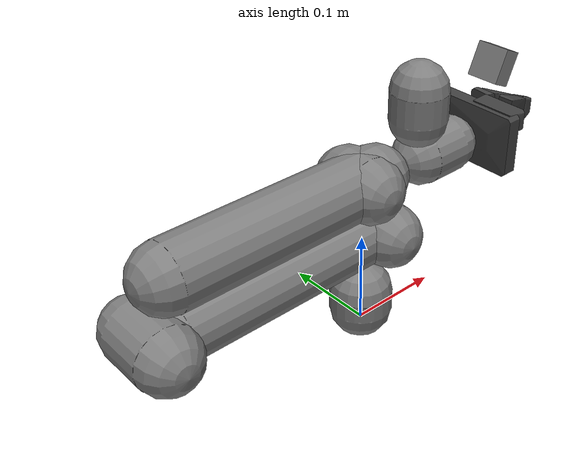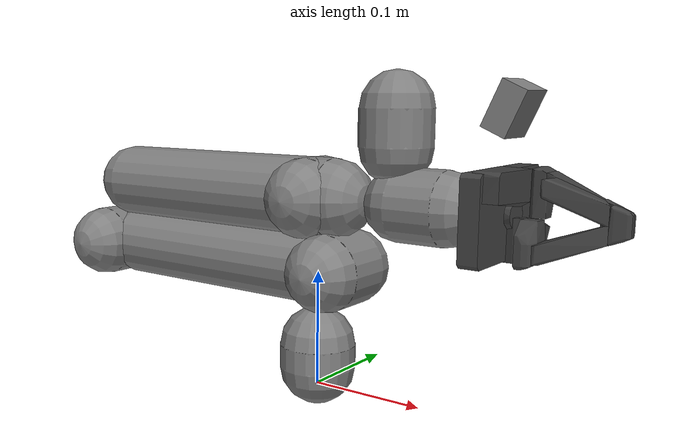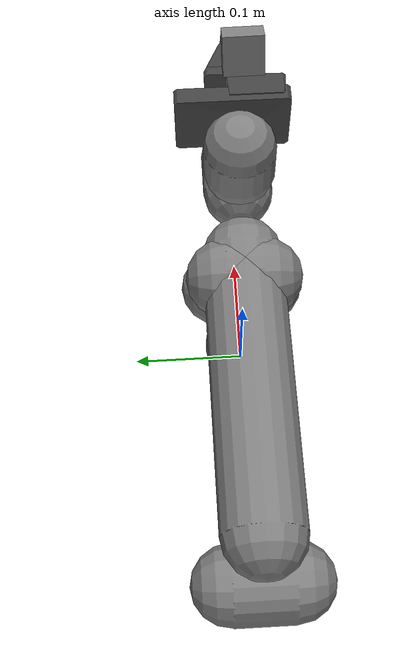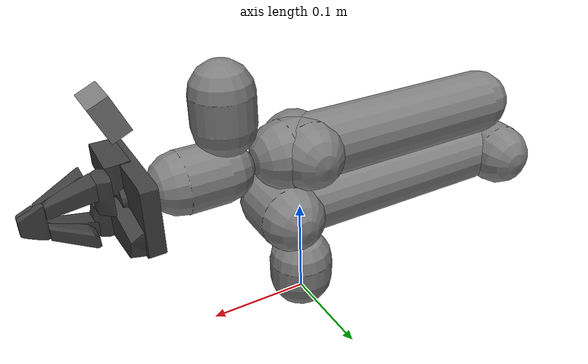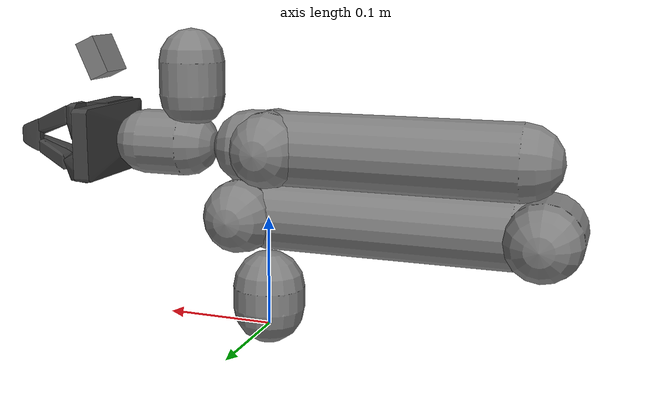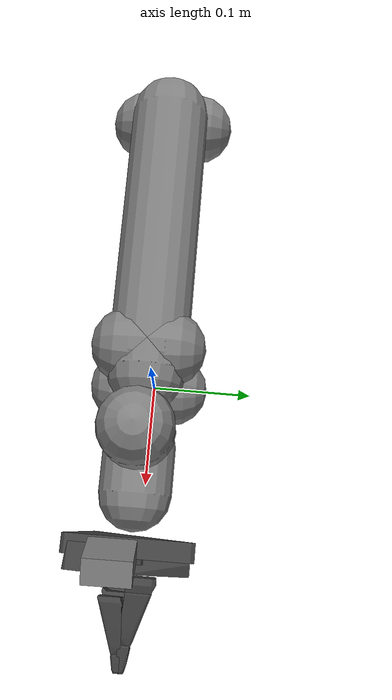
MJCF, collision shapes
<mujoco model="yam_v0">
  <compiler angle="radian" meshdir="assets"/>

  <default>
    <default class="yam">
      <site group="5" size="0.005" rgba="0 1 0 1"/>
      <joint axis="0 0 1"/>
      <default class="visual">
        <geom type="mesh" contype="0" conaffinity="0" density="0" group="2" material="black"/>
      </default>
      <default class="collision">
        <geom group="3" type="capsule"/>
        <default class="sphere_collision">
          <geom size="0.0006 0 0" type="sphere" rgba="1 0 0 1" group="4"/>
        </default>
      </default>
      <default class="finger">
        <joint type="slide" axis="0 0 -1"/>
      </default>
    </default>
  </default>

  <asset>
    <material name="black" rgba="0.25 0.25 0.25 1"/>
    <material name="white" rgba="0.9 0.9 0.9 1"/>
    <material name="tip_left_mat" rgba="0.25 0.25 0.25 1"/>
    <material name="tip_right_mat" rgba="0.25 0.25 0.25 1"/>
    <material name="finger" rgba="0.25 0.25 0.25 1"/>

    <mesh file="model2.stl"/>
    <mesh file="model2__2.stl"/>
    <mesh file="model2__3.stl"/>
    <mesh file="model2__4.stl"/>
    <mesh file="model2__5.stl"/>
    <mesh file="model2__6.stl"/>
    <mesh file="model2__7.stl"/>
    <mesh file="model2__8.stl"/>
    <mesh file="model2__9.stl"/>
    <mesh file="model2__10.stl"/>
    <mesh file="model2__11.stl"/>
    <mesh file="model2__12.stl"/>
    <mesh file="model2__13.stl"/>
    <mesh file="model2__14.stl"/>
    <mesh file="model2__15.stl"/>
    <mesh file="model2__16.stl"/>
    <mesh file="model2__17.stl"/>

    <!-- Gripper visual meshes. -->
    <mesh file="gripper.stl"/>
    <mesh file="tip_left.stl"/>
    <mesh file="tip_right.stl"/>
    <!-- Gripper collision meshes decomposed with V-HACD. -->
    <mesh name="gripper_hull_0" file="gripper_hull_0.stl"/>
    <mesh name="gripper_hull_1" file="gripper_hull_1.stl"/>
    <mesh name="gripper_hull_2" file="gripper_hull_2.stl"/>
    <mesh name="gripper_hull_3" file="gripper_hull_3.stl"/>
    <mesh name="gripper_hull_4" file="gripper_hull_4.stl"/>
    <mesh name="gripper_hull_5" file="gripper_hull_5.stl"/>
    <mesh name="gripper_hull_6" file="gripper_hull_6.stl"/>
    <mesh name="gripper_hull_7" file="gripper_hull_7.stl"/>
    <mesh name="tip_left_hull_0" file="tip_left_hull_0.stl"/>
    <mesh name="tip_left_hull_1" file="tip_left_hull_1.stl"/>
    <mesh name="tip_left_hull_2" file="tip_left_hull_2.stl"/>
    <mesh name="tip_left_hull_3" file="tip_left_hull_3.stl"/>
    <mesh name="tip_left_hull_4" file="tip_left_hull_4.stl"/>
    <mesh name="tip_left_hull_5" file="tip_left_hull_5.stl"/>
    <mesh name="tip_left_hull_6" file="tip_left_hull_6.stl"/>
    <mesh name="tip_left_hull_7" file="tip_left_hull_7.stl"/>
    <mesh name="tip_right_hull_0" file="tip_right_hull_0.stl"/>
    <mesh name="tip_right_hull_1" file="tip_right_hull_1.stl"/>
    <mesh name="tip_right_hull_2" file="tip_right_hull_2.stl"/>
    <mesh name="tip_right_hull_3" file="tip_right_hull_3.stl"/>
    <mesh name="tip_right_hull_4" file="tip_right_hull_4.stl"/>
    <mesh name="tip_right_hull_5" file="tip_right_hull_5.stl"/>
    <mesh name="tip_right_hull_6" file="tip_right_hull_6.stl"/>
    <mesh name="tip_right_hull_7" file="tip_right_hull_7.stl"/>

    <mesh name="camera_d405" file="d405.stl" scale="0.001 0.001 0.001"/>
  </asset>

  <worldbody>
    <light name="spotlight" mode="targetbodycom" target="link_6" pos="0 0 1"/>
    <camera name="front_cam" pos="1.1 0 .5" xyaxes="0 1 0 -0.3 0 0.7"/>
    <body name="arm" childclass="yam">
      <geom class="visual" pos="0 0 -0.0006" quat="1 0 0 1" mesh="model2"/>
      <geom name="base_collision" class="collision" size="0.033 0.01" pos="0.0 0.0 0.026" quat="1 0 0 0"/>
      <body name="link_1" pos="0 0 0.0631" quat="1 0 0 1">
        <inertial pos="-0.00192861 -0.00795735 0.0208176" quat="0.297851 0.642634 0.360045 0.607185" mass="0.12415"
          diaginertia="0.000180751 0.000145532 5.89179e-05"/>
        <joint name="joint1" range="-2.61799 3.05433"/>
        <geom class="visual" pos="5.26159e-07 2.34355e-07 -0.0632" quat="1 0 0 0" mesh="model2__2"/>
        <body name="link_2" pos="2.5e-05 -0.02 0.0409" quat="1 1 1 1">
          <inertial pos="0.132008 2.10599e-06 0.000293073" quat="1 1 1 1" mass="1.24434"
            diaginertia="0.0121902 0.0121318 0.000683304"/>
          <joint name="joint2" range="0 3.66519"/>
          <geom class="visual" pos="0.0199992 -0.1041 -2.44738e-05" quat="1 -1 -1 -1" mesh="model2__3"/>
          <geom class="visual" pos="0.0199992 -0.1041 -2.44738e-05" quat="1 -1 -1 -1" mesh="model2__4"/>
          <geom class="visual" pos="0.0199992 -0.1041 -2.44738e-05" quat="1 -1 -1 -1" mesh="model2__5" material="white"/>
          <geom name="link2_1_collision" class="collision" size="0.032 0.11" pos="0.13 0 0" quat="1 0 1 0"/>
          <geom name="link2_2_collision" class="collision" size="0.033 0.02" pos="0 0.0 0" quat="1 0 0 0"/>
          <geom name="link2_3_collision" class="collision" size="0.033 0.025" pos="0.265 0 0" quat="1 0 0 0"/>
          <body name="link_3" pos="0.264 0 0" quat="0 1 0 0">
            <inertial pos="-0.121816 -0.054846 -0.000111108" quat="1 1 1 1" mass="0.853698"
              diaginertia="0.00699732 0.00696112 0.000788244"/>
            <joint name="joint3" range="0 3.66519"/>
            <geom class="visual" pos="-0.244001 0.104101 2.44738e-05" quat="1 1 1 -1" mesh="model2__6"/>
            <geom class="visual" pos="-0.244001 0.104101 2.44738e-05" quat="1 1 1 -1" mesh="model2__7"/>
            <geom class="visual" pos="-0.244001 0.104101 2.44738e-05" quat="1 1 1 -1" mesh="model2__8" material="white"/>
            <geom class="visual" pos="-0.244001 0.104101 2.44738e-05" quat="1 1 1 -1" mesh="model2__9"/>
            <geom name="link3_1_collision" class="collision" size="0.034 0.12" pos="-0.14 -0.06 0.0" quat="1 0 1 0"/>
            <geom name="link3_2_collision" class="collision" size="0.034 0.015" pos="-0.24 -0.06 0.0" quat="1 0 0 0"/>
            <body name="link_4" pos="-0.245 -0.06 0" quat="1 0 0 0">
              <inertial pos="-0.0769778 -0.0527104 0.000154878" quat="0.667 0.667 -0.236 -0.236" mass="0.463511"
                diaginertia="0.000791532 0.000744733 0.000282116"/>
              <joint name="joint4" range="-1.5708 1.5708"/>
              <geom class="visual" pos="0.00100023 0.164101 2.44738e-05" quat="1 1 1 -1" mesh="model2__10"/>
              <geom name="link4_1_collision" class="collision" size="0.03 0.015" pos="-0.073 -0.06 0.0" quat="1 1 0 0"/>
              <body name="link_5" pos="-0.074 -0.0395 2.5e-05" quat="1 -1 1 1">
                <inertial pos="3.64861e-05 0.00025665 0.0353526" quat="1 0 0 0" mass="0.350962"
                  diaginertia="0.000197802 0.0001775 0.000147402"/>
                <joint name="joint5" range="-1.5708 1.5708"/>
                <geom class="visual" pos="0 -0.0749971 0.203601" quat="1.32679e-06 1 0 0" mesh="model2__11"/>
                <geom name="link5_1_collision" class="collision" size="0.030 0.02" pos="0 0.025 0.0395" quat="1 1 0 0"/>
                <body name="link_6" pos="0 0.0353 0.0395" quat="0.5 0.5 -0.5 0.5">
                  <inertial pos="-3.57066e-05 0.000249371 -0.0293133" quat="0.667981 0.744113 -0.00433092 0.00882801"
                    mass="0.553219" diaginertia="0.000409686 0.000369758 0.000324415"/>
                  <joint name="joint6" axis="0 0 -1" range="-2.0944 2.0944"/>
                  <geom class="visual" mesh="gripper" pos="-0.014 -0.0463995 0.0731" quat="1 0 0 0"/>
                  <geom name="gripper_0_collision" class="collision" type="mesh" mesh="gripper_hull_0"
                    pos="-0.014 -0.0463995 0.0731" material="finger"/>
                  <geom name="gripper_7_collision" class="collision" type="mesh" mesh="gripper_hull_7"
                    pos="-0.014 -0.0463995 0.0731" material="finger"/>
                  <site name="tcp_site" quat="0 1 0 0" size="0.005" rgba="1 0 0 1"/>
                  <site name="grasp_site" pos="0 0 -0.1347" quat="0 1 0 0" size="0.005" rgba="0 1 0 1"/>
                  <body name="camera_d405" pos="-0.07207 0.00894 -0.07139" quat="0.14674 -0.69384 0.68857 -0.15143">
                    <geom class="visual" mesh="camera_d405"/>
                    <geom class="collision" type="box" size=".018 .018 .01" pos="0 0 -0.01" group="4"/>
                    <body name="camera_frame" pos="0.009 0 0" quat="0 0 0 1">
                      <camera name="camera_d405" pos="0 0 0" quat="0 1 0 0" resolution="1280 720" sensorsize="1.28 0.72"
                        focal="0.652725 0.651808" principal="-0.00806787 -0.00235107"/>
                    </body>
                  </body>
                  <body name="tip_left" pos="-0.0238981 0.0450619 -0.0545599" quat="0.499998 -0.5 -0.5 -0.500002">
                    <inertial pos="-0.0224716 0.0143408 -0.0426253" quat="0.498899 0.455348 -0.0576406 0.735143"
                      mass="0.0710042" diaginertia="6.24193e-05 6.01079e-05 2.83591e-05"/>
                    <joint name="left_finger" class="finger" range="0 0.0475"/>
                    <geom name="tip_left_visual" pos="0.129783 0.00999321 -0.0914614" quat="0.499998 0.5 0.500002 0.5"
                      mesh="tip_left" class="visual" material="finger"/>
                    <geom name="tip_l_0_collision" class="collision" type="mesh" mesh="tip_left_hull_0"
                      pos="0.129783 0.00999321 -0.0914614" quat="0.499998 0.5 0.500002 0.5" material="finger"/>
                    <geom name="tip_l_1_collision" class="collision" type="mesh" mesh="tip_left_hull_1"
                      pos="0.129783 0.00999321 -0.0914614" quat="0.499998 0.5 0.500002 0.5" material="finger"/>
                    <geom name="tip_l_3_collision" class="collision" type="mesh" mesh="tip_left_hull_3"
                      pos="0.129783 0.00999321 -0.0914614" quat="0.499998 0.5 0.500002 0.5" material="finger"/>
                    <geom name="tip_l_4_collision" class="collision" type="mesh" mesh="tip_left_hull_4"
                      pos="0.129783 0.00999321 -0.0914614" quat="0.499998 0.5 0.500002 0.5" material="finger"/>
                    <geom name="tip_l_7_collision" class="collision" type="mesh" mesh="tip_left_hull_7"
                      pos="0.129783 0.00999321 -0.0914614" quat="0.499998 0.5 0.500002 0.5" material="finger"/>
                  </body>
                  <body name="tip_right" pos="0.0238981 -0.0450619 -0.0545599" quat="1 1 0 0">
                    <inertial pos="-0.0143408 -0.0224716 -0.0426253" quat="0.281222 0.8726 0.16705 -0.362738"
                      mass="0.0710042" diaginertia="6.24193e-05 6.01079e-05 2.83591e-05"/>
                    <joint name="right_finger" class="finger" range="0 0.0475"/>
                    <geom name="tip_right_visual" pos="-0.0379932 0.129783 0.00133753" quat="1 -1 0 0" mesh="tip_right"
                      class="visual" material="finger"/>
                    <geom name="tip_r_1_collision" class="collision" type="mesh" mesh="tip_right_hull_1"
                      pos="-0.0379932 0.129783 0.00133753" quat="1 -1 0 0" material="finger"/>
                    <geom name="tip_r_2_collision" class="collision" type="mesh" mesh="tip_right_hull_2"
                      pos="-0.0379932 0.129783 0.00133753" quat="1 -1 0 0" material="finger"/>
                    <geom name="tip_r_3_collision" class="collision" type="mesh" mesh="tip_right_hull_3"
                      pos="-0.0379932 0.129783 0.00133753" quat="1 -1 0 0" material="finger"/>
                    <geom name="tip_r_4_collision" class="collision" type="mesh" mesh="tip_right_hull_4"
                      pos="-0.0379932 0.129783 0.00133753" quat="1 -1 0 0" material="finger"/>
                    <geom name="tip_r_7_collision" class="collision" type="mesh" mesh="tip_right_hull_7"
                      pos="-0.0379932 0.129783 0.00133753" quat="1 -1 0 0" material="finger"/>
                  </body>
                </body>
              </body>
            </body>
          </body>
        </body>
      </body>
    </body>
  </worldbody>

  <equality>
    <joint joint1="left_finger" joint2="right_finger" polycoef="0 1 0 0 0"/>
  </equality>
</mujoco>
